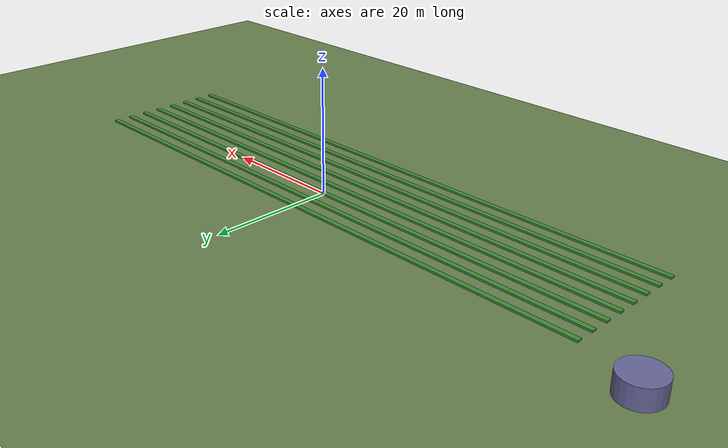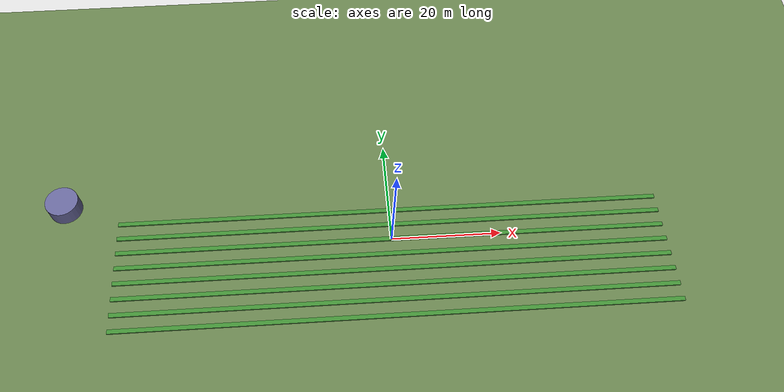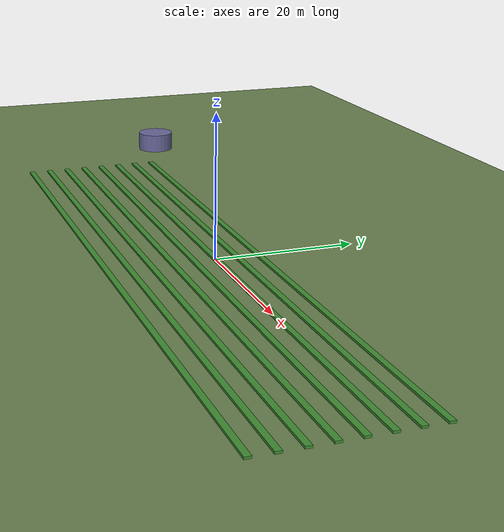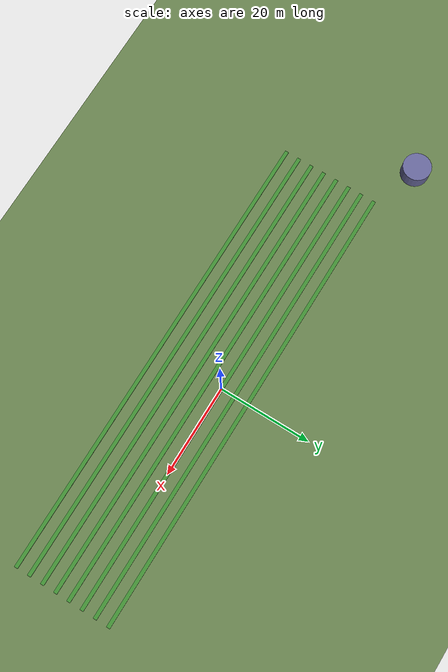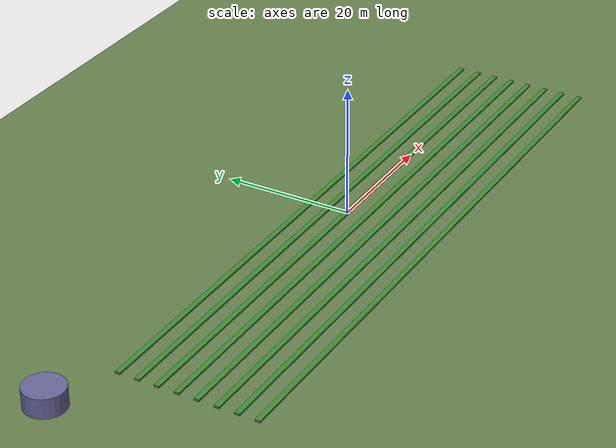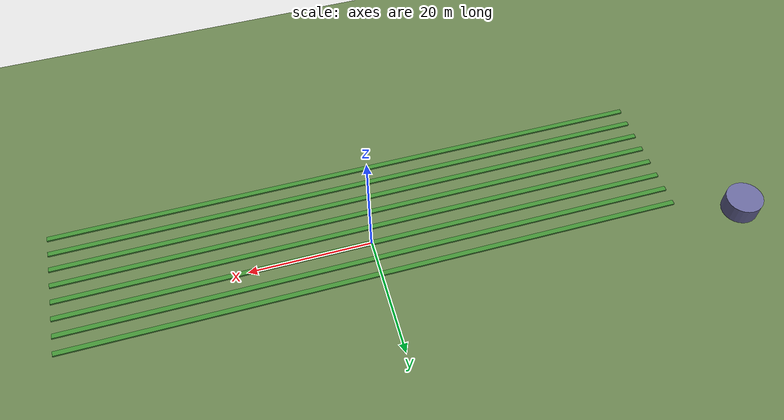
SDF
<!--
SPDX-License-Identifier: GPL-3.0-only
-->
<sdf version="1.9">
 <world name="ados_agriculture">
  <physics name="1ms" type="ignore">
   <max_step_size>0.001</max_step_size>
   <real_time_factor>1.0</real_time_factor>
  </physics>
  <plugin filename="gz-sim-physics-system" name="gz::sim::systems::Physics"/>
  <plugin filename="gz-sim-sensors-system" name="gz::sim::systems::Sensors">
   <render_engine>ogre2</render_engine>
  </plugin>
  <plugin filename="gz-sim-user-commands-system" name="gz::sim::systems::UserCommands"/>
  <plugin filename="gz-sim-scene-broadcaster-system" name="gz::sim::systems::SceneBroadcaster"/>
  <plugin filename="gz-sim-imu-system" name="gz::sim::systems::Imu"/>
  <plugin filename="gz-sim-navsat-system" name="gz::sim::systems::NavSat"/>
  <scene><ambient>1.0 1.0 1.0</ambient><background>0.8 0.8 0.8</background></scene>
  <spherical_coordinates>
   <latitude_deg>12.9716</latitude_deg>
   <longitude_deg>77.5946</longitude_deg>
   <elevation>920</elevation>
   <heading_deg>0</heading_deg>
   <surface_model>EARTH_WGS84</surface_model>
  </spherical_coordinates>
  <light type="directional" name="sun">
   <pose>0 0 10 0 0 0</pose>
   <diffuse>0.9 0.9 0.85 1</diffuse>
   <specular>0.2 0.2 0.2 1</specular>
   <attenuation>
    <range>1000</range>
    <constant>0.9</constant>
    <linear>0.01</linear>
    <quadratic>0.001</quadratic>
   </attenuation>
   <direction>-0.3 0.2 -0.9</direction>
  </light>
  <model name="field">
   <static>true</static>
   <link name="link">
    <collision name="collision">
     <geometry><plane><normal>0 0 1</normal><size>500 500</size></plane></geometry>
    </collision>
    <visual name="visual">
     <geometry><plane><normal>0 0 1</normal><size>500 500</size></plane></geometry>
     <material><ambient>0.35 0.45 0.25 1</ambient><diffuse>0.4 0.5 0.3 1</diffuse></material>
    </visual>
   </link>
  </model>
  <model name="crop_row_1">
   <static>true</static>
   <pose>0 -15 0.15 0 0 0</pose>
   <link name="link">
    <visual name="v">
     <geometry><box><size>100 0.8 0.3</size></box></geometry>
     <material><ambient>0.2 0.5 0.15 1</ambient><diffuse>0.25 0.55 0.2 1</diffuse></material>
    </visual>
   </link>
  </model>
  <model name="crop_row_2">
   <static>true</static>
   <pose>0 -12 0.15 0 0 0</pose>
   <link name="link">
    <visual name="v">
     <geometry><box><size>100 0.8 0.3</size></box></geometry>
     <material><ambient>0.2 0.5 0.15 1</ambient><diffuse>0.25 0.55 0.2 1</diffuse></material>
    </visual>
   </link>
  </model>
  <model name="crop_row_3">
   <static>true</static>
   <pose>0 -9 0.15 0 0 0</pose>
   <link name="link">
    <visual name="v">
     <geometry><box><size>100 0.8 0.3</size></box></geometry>
     <material><ambient>0.2 0.5 0.15 1</ambient><diffuse>0.25 0.55 0.2 1</diffuse></material>
    </visual>
   </link>
  </model>
  <model name="crop_row_4">
   <static>true</static>
   <pose>0 -6 0.15 0 0 0</pose>
   <link name="link">
    <visual name="v">
     <geometry><box><size>100 0.8 0.3</size></box></geometry>
     <material><ambient>0.2 0.5 0.15 1</ambient><diffuse>0.25 0.55 0.2 1</diffuse></material>
    </visual>
   </link>
  </model>
  <model name="crop_row_5">
   <static>true</static>
   <pose>0 -3 0.15 0 0 0</pose>
   <link name="link">
    <visual name="v">
     <geometry><box><size>100 0.8 0.3</size></box></geometry>
     <material><ambient>0.2 0.5 0.15 1</ambient><diffuse>0.25 0.55 0.2 1</diffuse></material>
    </visual>
   </link>
  </model>
  <model name="crop_row_6">
   <static>true</static>
   <pose>0 0 0.15 0 0 0</pose>
   <link name="link">
    <visual name="v">
     <geometry><box><size>100 0.8 0.3</size></box></geometry>
     <material><ambient>0.2 0.5 0.15 1</ambient><diffuse>0.25 0.55 0.2 1</diffuse></material>
    </visual>
   </link>
  </model>
  <model name="crop_row_7">
   <static>true</static>
   <pose>0 3 0.15 0 0 0</pose>
   <link name="link">
    <visual name="v">
     <geometry><box><size>100 0.8 0.3</size></box></geometry>
     <material><ambient>0.2 0.5 0.15 1</ambient><diffuse>0.25 0.55 0.2 1</diffuse></material>
    </visual>
   </link>
  </model>
  <model name="crop_row_8">
   <static>true</static>
   <pose>0 6 0.15 0 0 0</pose>
   <link name="link">
    <visual name="v">
     <geometry><box><size>100 0.8 0.3</size></box></geometry>
     <material><ambient>0.2 0.5 0.15 1</ambient><diffuse>0.25 0.55 0.2 1</diffuse></material>
    </visual>
   </link>
  </model>
  <model name="water_tank">
   <static>true</static>
   <pose>-60 10 1.5 0 0 0</pose>
   <link name="link">
    <collision name="collision">
     <geometry><cylinder><radius>3</radius><length>3</length></cylinder></geometry>
    </collision>
    <visual name="visual">
     <geometry><cylinder><radius>3</radius><length>3</length></cylinder></geometry>
     <material><ambient>0.3 0.3 0.5 1</ambient><diffuse>0.4 0.4 0.6 1</diffuse></material>
    </visual>
   </link>
  </model>
  <model name="axes">
   <static>1</static>
   <link name="link">
    <visual name="r">
     <cast_shadows>0</cast_shadows>
     <pose>5 0 0.1 0 0 0</pose>
     <geometry><box><size>10 0.01 0.01</size></box></geometry>
     <material><ambient>1 0 0 0.8</ambient><diffuse>1 0 0 0.8</diffuse><emissive>1 0 0 0.8</emissive></material>
    </visual>
    <visual name="g">
     <cast_shadows>0</cast_shadows>
     <pose>0 5 0.1 0 0 0</pose>
     <geometry><box><size>0.01 10 0.01</size></box></geometry>
     <material><ambient>0 1 0 0.8</ambient><diffuse>0 1 0 0.8</diffuse><emissive>0 1 0 0.8</emissive></material>
    </visual>
    <visual name="b">
     <cast_shadows>0</cast_shadows>
     <pose>0 0 5.1 0 0 0</pose>
     <geometry><box><size>0.01 0.01 10</size></box></geometry>
     <material><ambient>0 0 1 0.8</ambient><diffuse>0 0 1 0.8</diffuse><emissive>0 0 1 0.8</emissive></material>
    </visual>
    <sensor name="navsat_sensor" type="navsat"><always_on>1</always_on><update_rate>1</update_rate></sensor>
   </link>
  </model>
  <wind><linear_velocity>2 1 0</linear_velocity></wind>
 </world>
</sdf>
